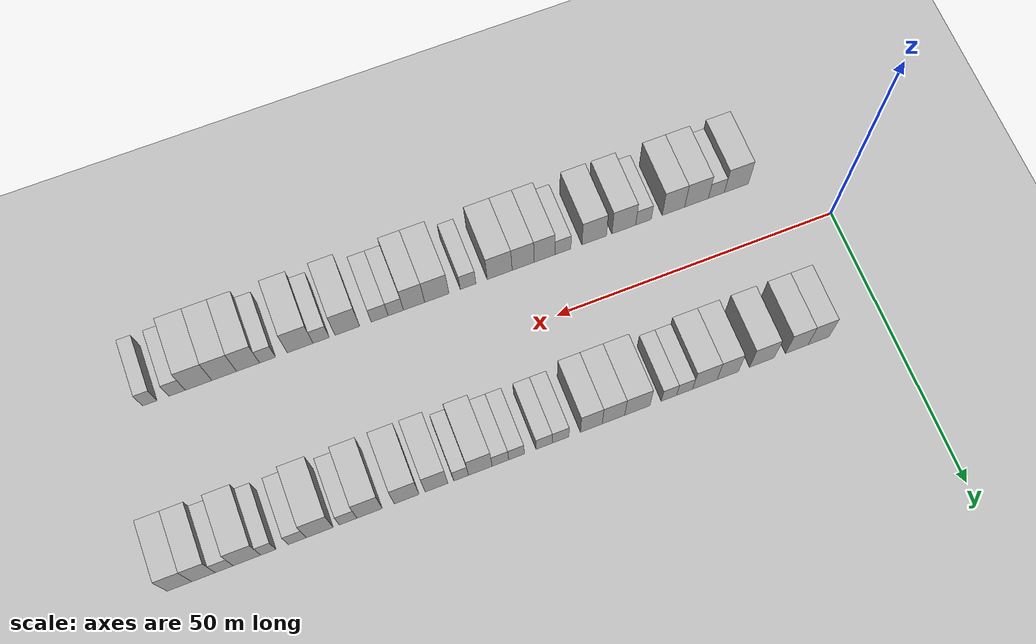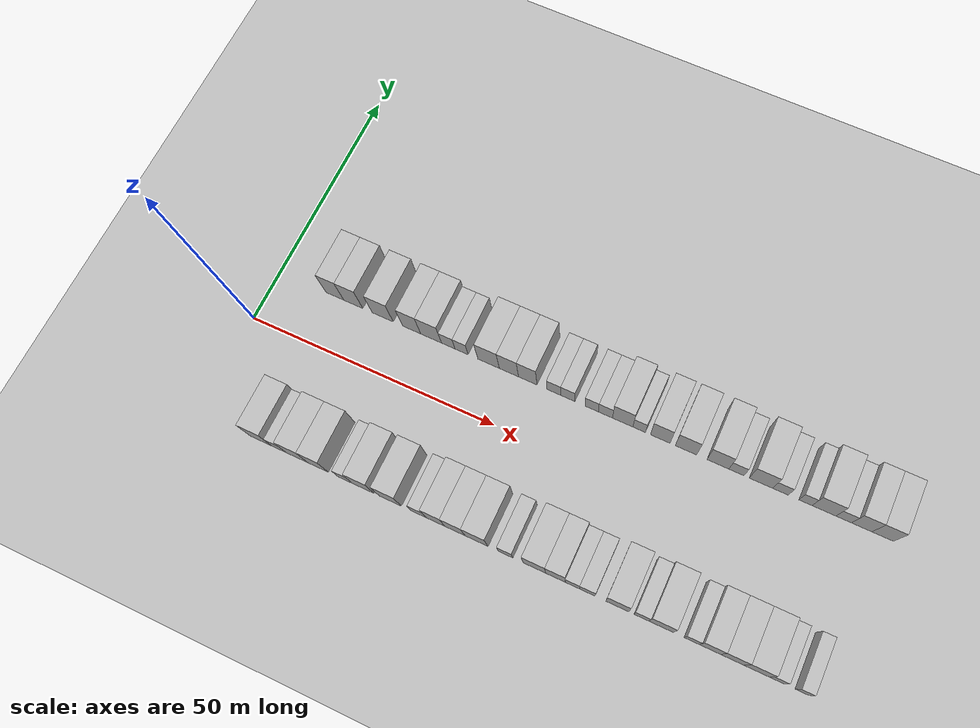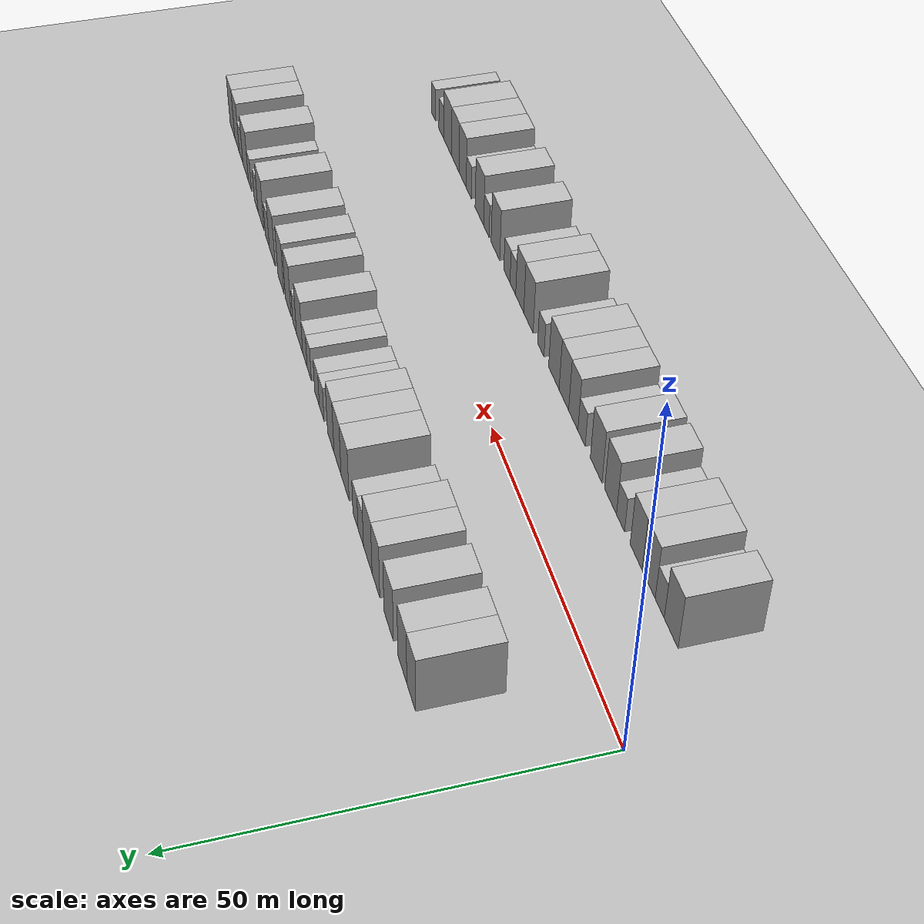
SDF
<sdf version="1.6">
 <world name="default">
  <include><name>ground_plane_1</name><uri>model://HANNAS_ground_plane</uri></include>
  <include>
   <name>ground_plane_2</name>
   <uri>model://HANNAS_ground_plane</uri>
   <pose>100 0 0  0 0 0</pose>
  </include>
  <model name="building_1">
   <static>1</static>
   <pose>11.9153 15.0000 0 0.000000 0.000000 1.570796</pose>
   <link name="link">
    <pose>0 0 4.50 0 0 0</pose>
    <collision name="collision"><geometry><box><size>10.0000 3.8306 9.0000</size></box></geometry></collision>
    <visual name="visual">
     <cast_shadows>0</cast_shadows>
     <geometry><box><size>10.0000 3.8306 9.0000</size></box></geometry>
     <material>
      <script>
       <uri>model://HANNAS_wall/materials/scripts</uri>
       <uri>model://HANNAS_wall/materials/textures</uri>
       <name>vrc/HANNAS_wall</name>
      </script>
     </material>
    </visual>
   </link>
  </model>
  <model name="building_2">
   <static>1</static>
   <pose>15.8499 15.0000 0 0.000000 0.000000 1.570796</pose>
   <link name="link">
    <pose>0 0 4.50 0 0 0</pose>
    <collision name="collision"><geometry><box><size>10.0000 4.0385 9.0000</size></box></geometry></collision>
    <visual name="visual">
     <cast_shadows>0</cast_shadows>
     <geometry><box><size>10.0000 4.0385 9.0000</size></box></geometry>
     <material>
      <script>
       <uri>model://HANNAS_wall/materials/scripts</uri>
       <uri>model://HANNAS_wall/materials/textures</uri>
       <name>vrc/HANNAS_wall</name>
      </script>
     </material>
    </visual>
   </link>
  </model>
  <model name="building_3">
   <static>1</static>
   <pose>22.0802 15.0000 0 0.000000 0.000000 1.570796</pose>
   <link name="link">
    <pose>0 0 4.50 0 0 0</pose>
    <collision name="collision"><geometry><box><size>10.0000 4.4222 9.0000</size></box></geometry></collision>
    <visual name="visual">
     <cast_shadows>0</cast_shadows>
     <geometry><box><size>10.0000 4.4222 9.0000</size></box></geometry>
     <material>
      <script>
       <uri>model://HANNAS_wall/materials/scripts</uri>
       <uri>model://HANNAS_wall/materials/textures</uri>
       <name>vrc/HANNAS_wall</name>
      </script>
     </material>
    </visual>
   </link>
  </model>
  <model name="building_4">
   <static>1</static>
   <pose>28.1877 15.0000 0 0.000000 0.000000 1.570796</pose>
   <link name="link">
    <pose>0 0 4.50 0 0 0</pose>
    <collision name="collision"><geometry><box><size>10.0000 3.7928 9.0000</size></box></geometry></collision>
    <visual name="visual">
     <cast_shadows>0</cast_shadows>
     <geometry><box><size>10.0000 3.7928 9.0000</size></box></geometry>
     <material>
      <script>
       <uri>model://HANNAS_wall/materials/scripts</uri>
       <uri>model://HANNAS_wall/materials/textures</uri>
       <name>vrc/HANNAS_wall</name>
      </script>
     </material>
    </visual>
   </link>
  </model>
  <model name="building_5">
   <static>1</static>
   <pose>32.2381 15.0000 0 0.000000 0.000000 1.570796</pose>
   <link name="link">
    <pose>0 0 4.50 0 0 0</pose>
    <collision name="collision"><geometry><box><size>10.0000 4.3079 9.0000</size></box></geometry></collision>
    <visual name="visual">
     <cast_shadows>0</cast_shadows>
     <geometry><box><size>10.0000 4.3079 9.0000</size></box></geometry>
     <material>
      <script>
       <uri>model://HANNAS_wall/materials/scripts</uri>
       <uri>model://HANNAS_wall/materials/textures</uri>
       <name>vrc/HANNAS_wall</name>
      </script>
     </material>
    </visual>
   </link>
  </model>
  <model name="building_6">
   <static>1</static>
   <pose>35.7951 15.0000 0 0.000000 0.000000 1.570796</pose>
   <link name="link">
    <pose>0 0 3.00 0 0 0</pose>
    <collision name="collision"><geometry><box><size>10.0000 2.8061 6.0000</size></box></geometry></collision>
    <visual name="visual">
     <cast_shadows>0</cast_shadows>
     <geometry><box><size>10.0000 2.8061 6.0000</size></box></geometry>
     <material>
      <script>
       <uri>model://HANNAS_wall/materials/scripts</uri>
       <uri>model://HANNAS_wall/materials/textures</uri>
       <name>vrc/HANNAS_wall</name>
      </script>
     </material>
    </visual>
   </link>
  </model>
  <model name="building_7">
   <static>1</static>
   <pose>38.5435 15.0000 0 0.000000 0.000000 1.570796</pose>
   <link name="link">
    <pose>0 0 3.00 0 0 0</pose>
    <collision name="collision"><geometry><box><size>10.0000 2.6907 6.0000</size></box></geometry></collision>
    <visual name="visual">
     <cast_shadows>0</cast_shadows>
     <geometry><box><size>10.0000 2.6907 6.0000</size></box></geometry>
     <material>
      <script>
       <uri>model://HANNAS_wall/materials/scripts</uri>
       <uri>model://HANNAS_wall/materials/textures</uri>
       <name>vrc/HANNAS_wall</name>
      </script>
     </material>
    </visual>
   </link>
  </model>
  <model name="building_8">
   <static>1</static>
   <pose>44.0865 15.0000 0 0.000000 0.000000 1.570796</pose>
   <link name="link">
    <pose>0 0 4.50 0 0 0</pose>
    <collision name="collision"><geometry><box><size>10.0000 4.3954 9.0000</size></box></geometry></collision>
    <visual name="visual">
     <cast_shadows>0</cast_shadows>
     <geometry><box><size>10.0000 4.3954 9.0000</size></box></geometry>
     <material>
      <script>
       <uri>model://HANNAS_wall/materials/scripts</uri>
       <uri>model://HANNAS_wall/materials/textures</uri>
       <name>vrc/HANNAS_wall</name>
      </script>
     </material>
    </visual>
   </link>
  </model>
  <model name="building_9">
   <static>1</static>
   <pose>48.2408 15.0000 0 0.000000 0.000000 1.570796</pose>
   <link name="link">
    <pose>0 0 4.50 0 0 0</pose>
    <collision name="collision"><geometry><box><size>10.0000 3.9131 9.0000</size></box></geometry></collision>
    <visual name="visual">
     <cast_shadows>0</cast_shadows>
     <geometry><box><size>10.0000 3.9131 9.0000</size></box></geometry>
     <material>
      <script>
       <uri>model://HANNAS_wall/materials/scripts</uri>
       <uri>model://HANNAS_wall/materials/textures</uri>
       <name>vrc/HANNAS_wall</name>
      </script>
     </material>
    </visual>
   </link>
  </model>
  <model name="building_10">
   <static>1</static>
   <pose>52.0716 15.0000 0 0.000000 0.000000 1.570796</pose>
   <link name="link">
    <pose>0 0 4.50 0 0 0</pose>
    <collision name="collision"><geometry><box><size>10.0000 3.7485 9.0000</size></box></geometry></collision>
    <visual name="visual">
     <cast_shadows>0</cast_shadows>
     <geometry><box><size>10.0000 3.7485 9.0000</size></box></geometry>
     <material>
      <script>
       <uri>model://HANNAS_wall/materials/scripts</uri>
       <uri>model://HANNAS_wall/materials/textures</uri>
       <name>vrc/HANNAS_wall</name>
      </script>
     </material>
    </visual>
   </link>
  </model>
  <model name="building_11">
   <static>1</static>
   <pose>57.3445 15.0000 0 0.000000 0.000000 1.570796</pose>
   <link name="link">
    <pose>0 0 3.00 0 0 0</pose>
    <collision name="collision"><geometry><box><size>10.0000 2.7974 6.0000</size></box></geometry></collision>
    <visual name="visual">
     <cast_shadows>0</cast_shadows>
     <geometry><box><size>10.0000 2.7974 6.0000</size></box></geometry>
     <material>
      <script>
       <uri>model://HANNAS_wall/materials/scripts</uri>
       <uri>model://HANNAS_wall/materials/textures</uri>
       <name>vrc/HANNAS_wall</name>
      </script>
     </material>
    </visual>
   </link>
  </model>
  <model name="building_12">
   <static>1</static>
   <pose>60.1542 15.0000 0 0.000000 0.000000 1.570796</pose>
   <link name="link">
    <pose>0 0 3.00 0 0 0</pose>
    <collision name="collision"><geometry><box><size>10.0000 2.8222 6.0000</size></box></geometry></collision>
    <visual name="visual">
     <cast_shadows>0</cast_shadows>
     <geometry><box><size>10.0000 2.8222 6.0000</size></box></geometry>
     <material>
      <script>
       <uri>model://HANNAS_wall/materials/scripts</uri>
       <uri>model://HANNAS_wall/materials/textures</uri>
       <name>vrc/HANNAS_wall</name>
      </script>
     </material>
    </visual>
   </link>
  </model>
  <model name="building_13">
   <static>1</static>
   <pose>64.9025 15.0000 0 0.000000 0.000000 1.570796</pose>
   <link name="link">
    <pose>0 0 3.00 0 0 0</pose>
    <collision name="collision"><geometry><box><size>10.0000 2.6743 6.0000</size></box></geometry></collision>
    <visual name="visual">
     <cast_shadows>0</cast_shadows>
     <geometry><box><size>10.0000 2.6743 6.0000</size></box></geometry>
     <material>
      <script>
       <uri>model://HANNAS_wall/materials/scripts</uri>
       <uri>model://HANNAS_wall/materials/textures</uri>
       <name>vrc/HANNAS_wall</name>
      </script>
     </material>
    </visual>
   </link>
  </model>
  <model name="building_14">
   <static>1</static>
   <pose>67.6442 15.0000 0 0.000000 0.000000 1.570796</pose>
   <link name="link">
    <pose>0 0 3.00 0 0 0</pose>
    <collision name="collision"><geometry><box><size>10.0000 2.8091 6.0000</size></box></geometry></collision>
    <visual name="visual">
     <cast_shadows>0</cast_shadows>
     <geometry><box><size>10.0000 2.8091 6.0000</size></box></geometry>
     <material>
      <script>
       <uri>model://HANNAS_wall/materials/scripts</uri>
       <uri>model://HANNAS_wall/materials/textures</uri>
       <name>vrc/HANNAS_wall</name>
      </script>
     </material>
    </visual>
   </link>
  </model>
  <model name="building_15">
   <static>1</static>
   <pose>71.0499 15.0000 0 0.000000 0.000000 1.570796</pose>
   <link name="link">
    <pose>0 0 4.50 0 0 0</pose>
    <collision name="collision"><geometry><box><size>10.0000 4.0023 9.0000</size></box></geometry></collision>
    <visual name="visual">
     <cast_shadows>0</cast_shadows>
     <geometry><box><size>10.0000 4.0023 9.0000</size></box></geometry>
     <material>
      <script>
       <uri>model://HANNAS_wall/materials/scripts</uri>
       <uri>model://HANNAS_wall/materials/textures</uri>
       <name>vrc/HANNAS_wall</name>
      </script>
     </material>
    </visual>
   </link>
  </model>
  <model name="building_16">
   <static>1</static>
   <pose>74.2884 15.0000 0 0.000000 0.000000 1.570796</pose>
   <link name="link">
    <pose>0 0 3.00 0 0 0</pose>
    <collision name="collision"><geometry><box><size>10.0000 2.4747 6.0000</size></box></geometry></collision>
    <visual name="visual">
     <cast_shadows>0</cast_shadows>
     <geometry><box><size>10.0000 2.4747 6.0000</size></box></geometry>
     <material>
      <script>
       <uri>model://HANNAS_wall/materials/scripts</uri>
       <uri>model://HANNAS_wall/materials/textures</uri>
       <name>vrc/HANNAS_wall</name>
      </script>
     </material>
    </visual>
   </link>
  </model>
  <model name="building_17">
   <static>1</static>
   <pose>78.4329 15.0000 0 0.000000 0.000000 1.570796</pose>
   <link name="link">
    <pose>0 0 4.50 0 0 0</pose>
    <collision name="collision"><geometry><box><size>10.0000 3.8142 9.0000</size></box></geometry></collision>
    <visual name="visual">
     <cast_shadows>0</cast_shadows>
     <geometry><box><size>10.0000 3.8142 9.0000</size></box></geometry>
     <material>
      <script>
       <uri>model://HANNAS_wall/materials/scripts</uri>
       <uri>model://HANNAS_wall/materials/textures</uri>
       <name>vrc/HANNAS_wall</name>
      </script>
     </material>
    </visual>
   </link>
  </model>
  <model name="building_18">
   <static>1</static>
   <pose>83.4169 15.0000 0 0.000000 0.000000 1.570796</pose>
   <link name="link">
    <pose>0 0 4.50 0 0 0</pose>
    <collision name="collision"><geometry><box><size>10.0000 4.1538 9.0000</size></box></geometry></collision>
    <visual name="visual">
     <cast_shadows>0</cast_shadows>
     <geometry><box><size>10.0000 4.1538 9.0000</size></box></geometry>
     <material>
      <script>
       <uri>model://HANNAS_wall/materials/scripts</uri>
       <uri>model://HANNAS_wall/materials/textures</uri>
       <name>vrc/HANNAS_wall</name>
      </script>
     </material>
    </visual>
   </link>
  </model>
  <model name="building_19">
   <static>1</static>
   <pose>89.5915 15.0000 0 0.000000 0.000000 1.570796</pose>
   <link name="link">
    <pose>0 0 4.50 0 0 0</pose>
    <collision name="collision"><geometry><box><size>10.0000 4.1954 9.0000</size></box></geometry></collision>
    <visual name="visual">
     <cast_shadows>0</cast_shadows>
     <geometry><box><size>10.0000 4.1954 9.0000</size></box></geometry>
     <material>
      <script>
       <uri>model://HANNAS_wall/materials/scripts</uri>
       <uri>model://HANNAS_wall/materials/textures</uri>
       <name>vrc/HANNAS_wall</name>
      </script>
     </material>
    </visual>
   </link>
  </model>
  <model name="building_20">
   <static>1</static>
   <pose>93.1447 15.0000 0 0.000000 0.000000 1.570796</pose>
   <link name="link">
    <pose>0 0 3.00 0 0 0</pose>
    <collision name="collision"><geometry><box><size>10.0000 2.9111 6.0000</size></box></geometry></collision>
    <visual name="visual">
     <cast_shadows>0</cast_shadows>
     <geometry><box><size>10.0000 2.9111 6.0000</size></box></geometry>
     <material>
      <script>
       <uri>model://HANNAS_wall/materials/scripts</uri>
       <uri>model://HANNAS_wall/materials/textures</uri>
       <name>vrc/HANNAS_wall</name>
      </script>
     </material>
    </visual>
   </link>
  </model>
  <model name="building_21">
   <static>1</static>
   <pose>97.8283 15.0000 0 0.000000 0.000000 1.570796</pose>
   <link name="link">
    <pose>0 0 4.50 0 0 0</pose>
    <collision name="collision"><geometry><box><size>10.0000 4.4561 9.0000</size></box></geometry></collision>
    <visual name="visual">
     <cast_shadows>0</cast_shadows>
     <geometry><box><size>10.0000 4.4561 9.0000</size></box></geometry>
     <material>
      <script>
       <uri>model://HANNAS_wall/materials/scripts</uri>
       <uri>model://HANNAS_wall/materials/textures</uri>
       <name>vrc/HANNAS_wall</name>
      </script>
     </material>
    </visual>
   </link>
  </model>
  <model name="building_22">
   <static>1</static>
   <pose>101.5247 15.0000 0 0.000000 0.000000 1.570796</pose>
   <link name="link">
    <pose>0 0 3.00 0 0 0</pose>
    <collision name="collision"><geometry><box><size>10.0000 2.9366 6.0000</size></box></geometry></collision>
    <visual name="visual">
     <cast_shadows>0</cast_shadows>
     <geometry><box><size>10.0000 2.9366 6.0000</size></box></geometry>
     <material>
      <script>
       <uri>model://HANNAS_wall/materials/scripts</uri>
       <uri>model://HANNAS_wall/materials/textures</uri>
       <name>vrc/HANNAS_wall</name>
      </script>
     </material>
    </visual>
   </link>
  </model>
  <model name="building_23">
   <static>1</static>
   <pose>106.2272 15.0000 0 0.000000 0.000000 1.570796</pose>
   <link name="link">
    <pose>0 0 3.00 0 0 0</pose>
    <collision name="collision"><geometry><box><size>10.0000 2.4686 6.0000</size></box></geometry></collision>
    <visual name="visual">
     <cast_shadows>0</cast_shadows>
     <geometry><box><size>10.0000 2.4686 6.0000</size></box></geometry>
     <material>
      <script>
       <uri>model://HANNAS_wall/materials/scripts</uri>
       <uri>model://HANNAS_wall/materials/textures</uri>
       <name>vrc/HANNAS_wall</name>
      </script>
     </material>
    </visual>
   </link>
  </model>
  <model name="building_24">
   <static>1</static>
   <pose>109.6873 15.0000 0 0.000000 0.000000 1.570796</pose>
   <link name="link">
    <pose>0 0 4.50 0 0 0</pose>
    <collision name="collision"><geometry><box><size>10.0000 4.4515 9.0000</size></box></geometry></collision>
    <visual name="visual">
     <cast_shadows>0</cast_shadows>
     <geometry><box><size>10.0000 4.4515 9.0000</size></box></geometry>
     <material>
      <script>
       <uri>model://HANNAS_wall/materials/scripts</uri>
       <uri>model://HANNAS_wall/materials/textures</uri>
       <name>vrc/HANNAS_wall</name>
      </script>
     </material>
    </visual>
   </link>
  </model>
  <model name="building_25">
   <static>1</static>
   <pose>113.3651 15.0000 0 0.000000 0.000000 1.570796</pose>
   <link name="link">
    <pose>0 0 3.00 0 0 0</pose>
    <collision name="collision"><geometry><box><size>10.0000 2.9041 6.0000</size></box></geometry></collision>
    <visual name="visual">
     <cast_shadows>0</cast_shadows>
     <geometry><box><size>10.0000 2.9041 6.0000</size></box></geometry>
     <material>
      <script>
       <uri>model://HANNAS_wall/materials/scripts</uri>
       <uri>model://HANNAS_wall/materials/textures</uri>
       <name>vrc/HANNAS_wall</name>
      </script>
     </material>
    </visual>
   </link>
  </model>
  <model name="building_26">
   <static>1</static>
   <pose>116.7013 15.0000 0 0.000000 0.000000 1.570796</pose>
   <link name="link">
    <pose>0 0 4.50 0 0 0</pose>
    <collision name="collision"><geometry><box><size>10.0000 3.7683 9.0000</size></box></geometry></collision>
    <visual name="visual">
     <cast_shadows>0</cast_shadows>
     <geometry><box><size>10.0000 3.7683 9.0000</size></box></geometry>
     <material>
      <script>
       <uri>model://HANNAS_wall/materials/scripts</uri>
       <uri>model://HANNAS_wall/materials/textures</uri>
       <name>vrc/HANNAS_wall</name>
      </script>
     </material>
    </visual>
   </link>
  </model>
  <model name="building_27">
   <static>1</static>
   <pose>120.5620 15.0000 0 0.000000 0.000000 1.570796</pose>
   <link name="link">
    <pose>0 0 4.50 0 0 0</pose>
    <collision name="collision"><geometry><box><size>10.0000 3.9531 9.0000</size></box></geometry></collision>
    <visual name="visual">
     <cast_shadows>0</cast_shadows>
     <geometry><box><size>10.0000 3.9531 9.0000</size></box></geometry>
     <material>
      <script>
       <uri>model://HANNAS_wall/materials/scripts</uri>
       <uri>model://HANNAS_wall/materials/textures</uri>
       <name>vrc/HANNAS_wall</name>
      </script>
     </material>
    </visual>
   </link>
  </model>
  <model name="building_54">
   <static>1</static>
   <pose>13.2277 -15.0000 0 0.000000 0.000000 1.570796</pose>
   <link name="link">
    <pose>0 0 4.50 0 0 0</pose>
    <collision name="collision"><geometry><box><size>10.0000 4.4554 9.0000</size></box></geometry></collision>
    <visual name="visual">
     <cast_shadows>0</cast_shadows>
     <geometry><box><size>10.0000 4.4554 9.0000</size></box></geometry>
     <material>
      <script>
       <uri>model://HANNAS_wall/materials/scripts</uri>
       <uri>model://HANNAS_wall/materials/textures</uri>
       <name>vrc/HANNAS_wall</name>
      </script>
     </material>
    </visual>
   </link>
  </model>
  <model name="building_55">
   <static>1</static>
   <pose>16.9342 -15.0000 0 0.000000 0.000000 1.570796</pose>
   <link name="link">
    <pose>0 0 3.00 0 0 0</pose>
    <collision name="collision"><geometry><box><size>10.0000 2.9576 6.0000</size></box></geometry></collision>
    <visual name="visual">
     <cast_shadows>0</cast_shadows>
     <geometry><box><size>10.0000 2.9576 6.0000</size></box></geometry>
     <material>
      <script>
       <uri>model://HANNAS_wall/materials/scripts</uri>
       <uri>model://HANNAS_wall/materials/textures</uri>
       <name>vrc/HANNAS_wall</name>
      </script>
     </material>
    </visual>
   </link>
  </model>
  <model name="building_56">
   <static>1</static>
   <pose>20.6080 -15.0000 0 0.000000 0.000000 1.570796</pose>
   <link name="link">
    <pose>0 0 4.50 0 0 0</pose>
    <collision name="collision"><geometry><box><size>10.0000 4.3901 9.0000</size></box></geometry></collision>
    <visual name="visual">
     <cast_shadows>0</cast_shadows>
     <geometry><box><size>10.0000 4.3901 9.0000</size></box></geometry>
     <material>
      <script>
       <uri>model://HANNAS_wall/materials/scripts</uri>
       <uri>model://HANNAS_wall/materials/textures</uri>
       <name>vrc/HANNAS_wall</name>
      </script>
     </material>
    </visual>
   </link>
  </model>
  <model name="building_57">
   <static>1</static>
   <pose>24.8699 -15.0000 0 0.000000 0.000000 1.570796</pose>
   <link name="link">
    <pose>0 0 4.50 0 0 0</pose>
    <collision name="collision"><geometry><box><size>10.0000 4.1338 9.0000</size></box></geometry></collision>
    <visual name="visual">
     <cast_shadows>0</cast_shadows>
     <geometry><box><size>10.0000 4.1338 9.0000</size></box></geometry>
     <material>
      <script>
       <uri>model://HANNAS_wall/materials/scripts</uri>
       <uri>model://HANNAS_wall/materials/textures</uri>
       <name>vrc/HANNAS_wall</name>
      </script>
     </material>
    </visual>
   </link>
  </model>
  <model name="building_58">
   <static>1</static>
   <pose>30.3729 -15.0000 0 0.000000 0.000000 1.570796</pose>
   <link name="link">
    <pose>0 0 3.00 0 0 0</pose>
    <collision name="collision"><geometry><box><size>10.0000 2.8723 6.0000</size></box></geometry></collision>
    <visual name="visual">
     <cast_shadows>0</cast_shadows>
     <geometry><box><size>10.0000 2.8723 6.0000</size></box></geometry>
     <material>
      <script>
       <uri>model://HANNAS_wall/materials/scripts</uri>
       <uri>model://HANNAS_wall/materials/textures</uri>
       <name>vrc/HANNAS_wall</name>
      </script>
     </material>
    </visual>
   </link>
  </model>
  <model name="building_59">
   <static>1</static>
   <pose>33.9763 -15.0000 0 0.000000 0.000000 1.570796</pose>
   <link name="link">
    <pose>0 0 4.50 0 0 0</pose>
    <collision name="collision"><geometry><box><size>10.0000 4.3345 9.0000</size></box></geometry></collision>
    <visual name="visual">
     <cast_shadows>0</cast_shadows>
     <geometry><box><size>10.0000 4.3345 9.0000</size></box></geometry>
     <material>
      <script>
       <uri>model://HANNAS_wall/materials/scripts</uri>
       <uri>model://HANNAS_wall/materials/textures</uri>
       <name>vrc/HANNAS_wall</name>
      </script>
     </material>
    </visual>
   </link>
  </model>
  <model name="building_60">
   <static>1</static>
   <pose>39.3561 -15.0000 0 0.000000 0.000000 1.570796</pose>
   <link name="link">
    <pose>0 0 4.50 0 0 0</pose>
    <collision name="collision"><geometry><box><size>10.0000 4.4251 9.0000</size></box></geometry></collision>
    <visual name="visual">
     <cast_shadows>0</cast_shadows>
     <geometry><box><size>10.0000 4.4251 9.0000</size></box></geometry>
     <material>
      <script>
       <uri>model://HANNAS_wall/materials/scripts</uri>
       <uri>model://HANNAS_wall/materials/textures</uri>
       <name>vrc/HANNAS_wall</name>
      </script>
     </material>
    </visual>
   </link>
  </model>
  <model name="building_61">
   <static>1</static>
   <pose>45.0095 -15.0000 0 0.000000 0.000000 1.570796</pose>
   <link name="link">
    <pose>0 0 3.00 0 0 0</pose>
    <collision name="collision"><geometry><box><size>10.0000 2.8817 6.0000</size></box></geometry></collision>
    <visual name="visual">
     <cast_shadows>0</cast_shadows>
     <geometry><box><size>10.0000 2.8817 6.0000</size></box></geometry>
     <material>
      <script>
       <uri>model://HANNAS_wall/materials/scripts</uri>
       <uri>model://HANNAS_wall/materials/textures</uri>
       <name>vrc/HANNAS_wall</name>
      </script>
     </material>
    </visual>
   </link>
  </model>
  <model name="building_62">
   <static>1</static>
   <pose>48.3139 -15.0000 0 0.000000 0.000000 1.570796</pose>
   <link name="link">
    <pose>0 0 4.50 0 0 0</pose>
    <collision name="collision"><geometry><box><size>10.0000 3.7271 9.0000</size></box></geometry></collision>
    <visual name="visual">
     <cast_shadows>0</cast_shadows>
     <geometry><box><size>10.0000 3.7271 9.0000</size></box></geometry>
     <material>
      <script>
       <uri>model://HANNAS_wall/materials/scripts</uri>
       <uri>model://HANNAS_wall/materials/textures</uri>
       <name>vrc/HANNAS_wall</name>
      </script>
     </material>
    </visual>
   </link>
  </model>
  <model name="building_63">
   <static>1</static>
   <pose>52.1491 -15.0000 0 0.000000 0.000000 1.570796</pose>
   <link name="link">
    <pose>0 0 4.50 0 0 0</pose>
    <collision name="collision"><geometry><box><size>10.0000 3.9433 9.0000</size></box></geometry></collision>
    <visual name="visual">
     <cast_shadows>0</cast_shadows>
     <geometry><box><size>10.0000 3.9433 9.0000</size></box></geometry>
     <material>
      <script>
       <uri>model://HANNAS_wall/materials/scripts</uri>
       <uri>model://HANNAS_wall/materials/textures</uri>
       <name>vrc/HANNAS_wall</name>
      </script>
     </material>
    </visual>
   </link>
  </model>
  <model name="building_64">
   <static>1</static>
   <pose>56.3393 -15.0000 0 0.000000 0.000000 1.570796</pose>
   <link name="link">
    <pose>0 0 4.50 0 0 0</pose>
    <collision name="collision"><geometry><box><size>10.0000 4.4372 9.0000</size></box></geometry></collision>
    <visual name="visual">
     <cast_shadows>0</cast_shadows>
     <geometry><box><size>10.0000 4.4372 9.0000</size></box></geometry>
     <material>
      <script>
       <uri>model://HANNAS_wall/materials/scripts</uri>
       <uri>model://HANNAS_wall/materials/textures</uri>
       <name>vrc/HANNAS_wall</name>
      </script>
     </material>
    </visual>
   </link>
  </model>
  <model name="building_65">
   <static>1</static>
   <pose>61.9436 -15.0000 0 0.000000 0.000000 1.570796</pose>
   <link name="link">
    <pose>0 0 3.00 0 0 0</pose>
    <collision name="collision"><geometry><box><size>10.0000 2.7714 6.0000</size></box></geometry></collision>
    <visual name="visual">
     <cast_shadows>0</cast_shadows>
     <geometry><box><size>10.0000 2.7714 6.0000</size></box></geometry>
     <material>
      <script>
       <uri>model://HANNAS_wall/materials/scripts</uri>
       <uri>model://HANNAS_wall/materials/textures</uri>
       <name>vrc/HANNAS_wall</name>
      </script>
     </material>
    </visual>
   </link>
  </model>
  <model name="building_66">
   <static>1</static>
   <pose>67.4714 -15.0000 0 0.000000 0.000000 1.570796</pose>
   <link name="link">
    <pose>0 0 4.50 0 0 0</pose>
    <collision name="collision"><geometry><box><size>10.0000 4.2842 9.0000</size></box></geometry></collision>
    <visual name="visual">
     <cast_shadows>0</cast_shadows>
     <geometry><box><size>10.0000 4.2842 9.0000</size></box></geometry>
     <material>
      <script>
       <uri>model://HANNAS_wall/materials/scripts</uri>
       <uri>model://HANNAS_wall/materials/textures</uri>
       <name>vrc/HANNAS_wall</name>
      </script>
     </material>
    </visual>
   </link>
  </model>
  <model name="building_67">
   <static>1</static>
   <pose>71.4710 -15.0000 0 0.000000 0.000000 1.570796</pose>
   <link name="link">
    <pose>0 0 4.50 0 0 0</pose>
    <collision name="collision"><geometry><box><size>10.0000 3.7149 9.0000</size></box></geometry></collision>
    <visual name="visual">
     <cast_shadows>0</cast_shadows>
     <geometry><box><size>10.0000 3.7149 9.0000</size></box></geometry>
     <material>
      <script>
       <uri>model://HANNAS_wall/materials/scripts</uri>
       <uri>model://HANNAS_wall/materials/textures</uri>
       <name>vrc/HANNAS_wall</name>
      </script>
     </material>
    </visual>
   </link>
  </model>
  <model name="building_68">
   <static>1</static>
   <pose>74.6642 -15.0000 0 0.000000 0.000000 1.570796</pose>
   <link name="link">
    <pose>0 0 3.00 0 0 0</pose>
    <collision name="collision"><geometry><box><size>10.0000 2.6715 6.0000</size></box></geometry></collision>
    <visual name="visual">
     <cast_shadows>0</cast_shadows>
     <geometry><box><size>10.0000 2.6715 6.0000</size></box></geometry>
     <material>
      <script>
       <uri>model://HANNAS_wall/materials/scripts</uri>
       <uri>model://HANNAS_wall/materials/textures</uri>
       <name>vrc/HANNAS_wall</name>
      </script>
     </material>
    </visual>
   </link>
  </model>
  <model name="building_69">
   <static>1</static>
   <pose>77.4798 -15.0000 0 0.000000 0.000000 1.570796</pose>
   <link name="link">
    <pose>0 0 3.00 0 0 0</pose>
    <collision name="collision"><geometry><box><size>10.0000 2.9597 6.0000</size></box></geometry></collision>
    <visual name="visual">
     <cast_shadows>0</cast_shadows>
     <geometry><box><size>10.0000 2.9597 6.0000</size></box></geometry>
     <material>
      <script>
       <uri>model://HANNAS_wall/materials/scripts</uri>
       <uri>model://HANNAS_wall/materials/textures</uri>
       <name>vrc/HANNAS_wall</name>
      </script>
     </material>
    </visual>
   </link>
  </model>
  <model name="building_70">
   <static>1</static>
   <pose>83.0915 -15.0000 0 0.000000 0.000000 1.570796</pose>
   <link name="link">
    <pose>0 0 4.50 0 0 0</pose>
    <collision name="collision"><geometry><box><size>10.0000 4.2637 9.0000</size></box></geometry></collision>
    <visual name="visual">
     <cast_shadows>0</cast_shadows>
     <geometry><box><size>10.0000 4.2637 9.0000</size></box></geometry>
     <material>
      <script>
       <uri>model://HANNAS_wall/materials/scripts</uri>
       <uri>model://HANNAS_wall/materials/textures</uri>
       <name>vrc/HANNAS_wall</name>
      </script>
     </material>
    </visual>
   </link>
  </model>
  <model name="building_71">
   <static>1</static>
   <pose>87.6114 -15.0000 0 0.000000 0.000000 1.570796</pose>
   <link name="link">
    <pose>0 0 3.00 0 0 0</pose>
    <collision name="collision"><geometry><box><size>10.0000 2.7761 6.0000</size></box></geometry></collision>
    <visual name="visual">
     <cast_shadows>0</cast_shadows>
     <geometry><box><size>10.0000 2.7761 6.0000</size></box></geometry>
     <material>
      <script>
       <uri>model://HANNAS_wall/materials/scripts</uri>
       <uri>model://HANNAS_wall/materials/textures</uri>
       <name>vrc/HANNAS_wall</name>
      </script>
     </material>
    </visual>
   </link>
  </model>
  <model name="building_72">
   <static>1</static>
   <pose>91.2187 -15.0000 0 0.000000 0.000000 1.570796</pose>
   <link name="link">
    <pose>0 0 4.50 0 0 0</pose>
    <collision name="collision"><geometry><box><size>10.0000 4.4385 9.0000</size></box></geometry></collision>
    <visual name="visual">
     <cast_shadows>0</cast_shadows>
     <geometry><box><size>10.0000 4.4385 9.0000</size></box></geometry>
     <material>
      <script>
       <uri>model://HANNAS_wall/materials/scripts</uri>
       <uri>model://HANNAS_wall/materials/textures</uri>
       <name>vrc/HANNAS_wall</name>
      </script>
     </material>
    </visual>
   </link>
  </model>
  <model name="building_73">
   <static>1</static>
   <pose>96.8016 -15.0000 0 0.000000 0.000000 1.570796</pose>
   <link name="link">
    <pose>0 0 3.00 0 0 0</pose>
    <collision name="collision"><geometry><box><size>10.0000 2.7273 6.0000</size></box></geometry></collision>
    <visual name="visual">
     <cast_shadows>0</cast_shadows>
     <geometry><box><size>10.0000 2.7273 6.0000</size></box></geometry>
     <material>
      <script>
       <uri>model://HANNAS_wall/materials/scripts</uri>
       <uri>model://HANNAS_wall/materials/textures</uri>
       <name>vrc/HANNAS_wall</name>
      </script>
     </material>
    </visual>
   </link>
  </model>
  <model name="building_74">
   <static>1</static>
   <pose>100.1162 -15.0000 0 0.000000 0.000000 1.570796</pose>
   <link name="link">
    <pose>0 0 4.50 0 0 0</pose>
    <collision name="collision"><geometry><box><size>10.0000 3.9020 9.0000</size></box></geometry></collision>
    <visual name="visual">
     <cast_shadows>0</cast_shadows>
     <geometry><box><size>10.0000 3.9020 9.0000</size></box></geometry>
     <material>
      <script>
       <uri>model://HANNAS_wall/materials/scripts</uri>
       <uri>model://HANNAS_wall/materials/textures</uri>
       <name>vrc/HANNAS_wall</name>
      </script>
     </material>
    </visual>
   </link>
  </model>
  <model name="building_75">
   <static>1</static>
   <pose>104.1599 -15.0000 0 0.000000 0.000000 1.570796</pose>
   <link name="link">
    <pose>0 0 4.50 0 0 0</pose>
    <collision name="collision"><geometry><box><size>10.0000 4.1854 9.0000</size></box></geometry></collision>
    <visual name="visual">
     <cast_shadows>0</cast_shadows>
     <geometry><box><size>10.0000 4.1854 9.0000</size></box></geometry>
     <material>
      <script>
       <uri>model://HANNAS_wall/materials/scripts</uri>
       <uri>model://HANNAS_wall/materials/textures</uri>
       <name>vrc/HANNAS_wall</name>
      </script>
     </material>
    </visual>
   </link>
  </model>
  <model name="building_76">
   <static>1</static>
   <pose>108.4983 -15.0000 0 0.000000 0.000000 1.570796</pose>
   <link name="link">
    <pose>0 0 4.50 0 0 0</pose>
    <collision name="collision"><geometry><box><size>10.0000 4.4914 9.0000</size></box></geometry></collision>
    <visual name="visual">
     <cast_shadows>0</cast_shadows>
     <geometry><box><size>10.0000 4.4914 9.0000</size></box></geometry>
     <material>
      <script>
       <uri>model://HANNAS_wall/materials/scripts</uri>
       <uri>model://HANNAS_wall/materials/textures</uri>
       <name>vrc/HANNAS_wall</name>
      </script>
     </material>
    </visual>
   </link>
  </model>
  <model name="building_77">
   <static>1</static>
   <pose>112.1093 -15.0000 0 0.000000 0.000000 1.570796</pose>
   <link name="link">
    <pose>0 0 3.00 0 0 0</pose>
    <collision name="collision"><geometry><box><size>10.0000 2.7305 6.0000</size></box></geometry></collision>
    <visual name="visual">
     <cast_shadows>0</cast_shadows>
     <geometry><box><size>10.0000 2.7305 6.0000</size></box></geometry>
     <material>
      <script>
       <uri>model://HANNAS_wall/materials/scripts</uri>
       <uri>model://HANNAS_wall/materials/textures</uri>
       <name>vrc/HANNAS_wall</name>
      </script>
     </material>
    </visual>
   </link>
  </model>
  <model name="building_78">
   <static>1</static>
   <pose>116.6830 -15.0000 0 0.000000 0.000000 1.570796</pose>
   <link name="link">
    <pose>0 0 3.00 0 0 0</pose>
    <collision name="collision"><geometry><box><size>10.0000 2.4169 6.0000</size></box></geometry></collision>
    <visual name="visual">
     <cast_shadows>0</cast_shadows>
     <geometry><box><size>10.0000 2.4169 6.0000</size></box></geometry>
     <material>
      <script>
       <uri>model://HANNAS_wall/materials/scripts</uri>
       <uri>model://HANNAS_wall/materials/textures</uri>
       <name>vrc/HANNAS_wall</name>
      </script>
     </material>
    </visual>
   </link>
  </model>
 </world>
</sdf>
